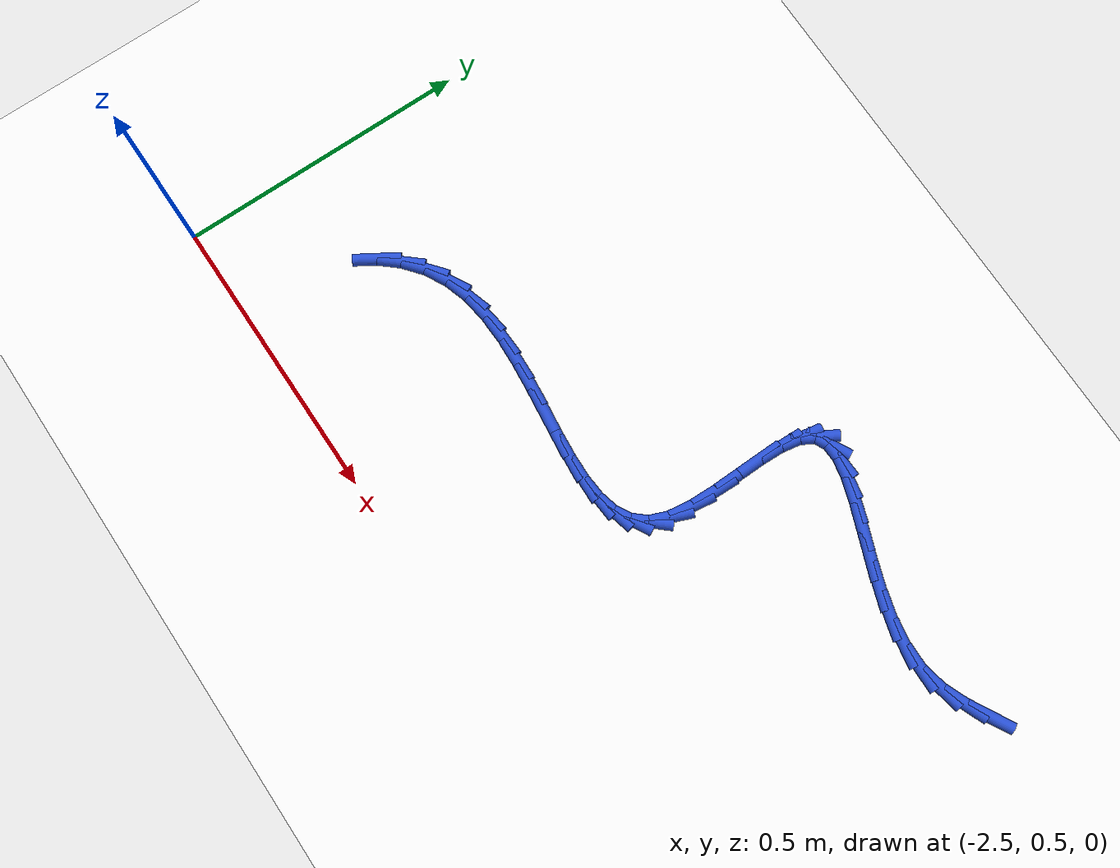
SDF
<sdf version="1.6">
 <world name="default">
  <model name="ground_plane">
   <static>1</static>
   <link name="link">
    <collision name="collision">
     <geometry><plane><normal>0 0 1</normal><size>100 100</size></plane></geometry>
     <surface><friction><ode><mu>100</mu><mu2>50</mu2></ode></friction></surface>
    </collision>
    <visual name="visual">
     <cast_shadows>0</cast_shadows>
     <geometry><plane><normal>0 0 1</normal><size>100 100</size></plane></geometry>
     <material>
      <script><uri>file://media/materials/scripts/gazebo.material</uri><name>Gazebo/WhiteGlow</name></script>
     </material>
    </visual>
   </link>
  </model>
  <model name="line">
   <link name="link_57">
    <pose>-1.14592876070842 1.1128604054703723 0.01 0 1.57 0.49512315362481224</pose>
    <collision name="collision">
     <geometry><cylinder><radius>0.01</radius><length>0.08</length></cylinder></geometry>
    </collision>
    <visual name="visual">
     <material>
      <script><name>Gazebo/Blue</name><uri>file://media/materials/scripts/gazebo.material</uri></script>
     </material>
     <geometry><cylinder><radius>0.01</radius><length>0.08</length></cylinder></geometry>
    </visual>
   </link>
   <link name="link_58">
    <pose>-1.1829979061100724 1.092843550995067 0.01 0 1.57 0.38882251743181706</pose>
    <collision name="collision">
     <geometry><cylinder><radius>0.01</radius><length>0.08</length></cylinder></geometry>
    </collision>
    <visual name="visual">
     <material>
      <script><name>Gazebo/Blue</name><uri>file://media/materials/scripts/gazebo.material</uri></script>
     </material>
     <geometry><cylinder><radius>0.01</radius><length>0.08</length></cylinder></geometry>
    </visual>
   </link>
   <link name="link_59">
    <pose>-1.2225672369330933 1.0766328214485796 0.01 0 1.57 0.18886843430079545</pose>
    <collision name="collision">
     <geometry><cylinder><radius>0.01</radius><length>0.08</length></cylinder></geometry>
    </collision>
    <visual name="visual">
     <material>
      <script><name>Gazebo/Blue</name><uri>file://media/materials/scripts/gazebo.material</uri></script>
     </material>
     <geometry><cylinder><radius>0.01</radius><length>0.08</length></cylinder></geometry>
    </visual>
   </link>
   <link name="link_60">
    <pose>-1.2649243204528209 1.068536405833244 0.01 0 1.57 -0.02352594420173727</pose>
    <collision name="collision">
     <geometry><cylinder><radius>0.01</radius><length>0.08</length></cylinder></geometry>
    </collision>
    <visual name="visual">
     <material>
      <script><name>Gazebo/Blue</name><uri>file://media/materials/scripts/gazebo.material</uri></script>
     </material>
     <geometry><cylinder><radius>0.01</radius><length>0.08</length></cylinder></geometry>
    </visual>
   </link>
   <link name="link_61">
    <pose>-1.3096845394527534 1.0695896265637743 0.01 0 1.57 -0.1759563586497165</pose>
    <collision name="collision">
     <geometry><cylinder><radius>0.01</radius><length>0.08</length></cylinder></geometry>
    </collision>
    <visual name="visual">
     <material>
      <script><name>Gazebo/Blue</name><uri>file://media/materials/scripts/gazebo.material</uri></script>
     </material>
     <geometry><cylinder><radius>0.01</radius><length>0.08</length></cylinder></geometry>
    </visual>
   </link>
   <link name="link_62">
    <pose>-1.3558405898408972 1.0777959433831446 0.01 0 1.57 -0.27743981206993373</pose>
    <collision name="collision">
     <geometry><cylinder><radius>0.01</radius><length>0.08</length></cylinder></geometry>
    </collision>
    <visual name="visual">
     <material>
      <script><name>Gazebo/Blue</name><uri>file://media/materials/scripts/gazebo.material</uri></script>
     </material>
     <geometry><cylinder><radius>0.01</radius><length>0.08</length></cylinder></geometry>
    </visual>
   </link>
   <link name="link_63">
    <pose>-1.4023616739739386 1.091044425922567 0.01 0 1.57 -0.3392050994815514</pose>
    <collision name="collision">
     <geometry><cylinder><radius>0.01</radius><length>0.08</length></cylinder></geometry>
    </collision>
    <visual name="visual">
     <material>
      <script><name>Gazebo/Blue</name><uri>file://media/materials/scripts/gazebo.material</uri></script>
     </material>
     <geometry><cylinder><radius>0.01</radius><length>0.08</length></cylinder></geometry>
    </visual>
   </link>
   <link name="link_64">
    <pose>-1.4482169942085614 1.107224143813251 0.01 0 1.57 -0.36748716285291777</pose>
    <collision name="collision">
     <geometry><cylinder><radius>0.01</radius><length>0.08</length></cylinder></geometry>
    </collision>
    <visual name="visual">
     <material>
      <script><name>Gazebo/Blue</name><uri>file://media/materials/scripts/gazebo.material</uri></script>
     </material>
     <geometry><cylinder><radius>0.01</radius><length>0.08</length></cylinder></geometry>
    </visual>
   </link>
   <link name="link_65">
    <pose>-1.4923757529014512 1.1242241666864081 0.01 0 1.57 -0.36241845271144185</pose>
    <collision name="collision">
     <geometry><cylinder><radius>0.01</radius><length>0.08</length></cylinder></geometry>
    </collision>
    <visual name="visual">
     <material>
      <script><name>Gazebo/Blue</name><uri>file://media/materials/scripts/gazebo.material</uri></script>
     </material>
     <geometry><cylinder><radius>0.01</radius><length>0.08</length></cylinder></geometry>
    </visual>
   </link>
   <link name="link_66">
    <pose>-1.5338071524092933 1.1399335641732482 0.01 0 1.57 -0.31576856222250815</pose>
    <collision name="collision">
     <geometry><cylinder><radius>0.01</radius><length>0.08</length></cylinder></geometry>
    </collision>
    <visual name="visual">
     <material>
      <script><name>Gazebo/Blue</name><uri>file://media/materials/scripts/gazebo.material</uri></script>
     </material>
     <geometry><cylinder><radius>0.01</radius><length>0.08</length></cylinder></geometry>
    </visual>
   </link>
   <link name="link_67">
    <pose>-1.5714803950887712 1.1522414059049817 0.01 0 1.57 -0.20377621307233781</pose>
    <collision name="collision">
     <geometry><cylinder><radius>0.01</radius><length>0.08</length></cylinder></geometry>
    </collision>
    <visual name="visual">
     <material>
      <script><name>Gazebo/Blue</name><uri>file://media/materials/scripts/gazebo.material</uri></script>
     </material>
     <geometry><cylinder><radius>0.01</radius><length>0.08</length></cylinder></geometry>
    </visual>
   </link>
   <link name="link_68">
    <pose>-1.604364683296572 1.1590367615128192 0.01 0 1.57 0.030586249244087038</pose>
    <collision name="collision">
     <geometry><cylinder><radius>0.01</radius><length>0.08</length></cylinder></geometry>
    </collision>
    <visual name="visual">
     <material>
      <script><name>Gazebo/Blue</name><uri>file://media/materials/scripts/gazebo.material</uri></script>
     </material>
     <geometry><cylinder><radius>0.01</radius><length>0.08</length></cylinder></geometry>
    </visual>
   </link>
   <link name="link_69">
    <pose>-1.6314292193893785 1.158208700627971 0.01 0 1.57 0.48150847401066266</pose>
    <collision name="collision">
     <geometry><cylinder><radius>0.01</radius><length>0.08</length></cylinder></geometry>
    </collision>
    <visual name="visual">
     <material>
      <script><name>Gazebo/Blue</name><uri>file://media/materials/scripts/gazebo.material</uri></script>
     </material>
     <geometry><cylinder><radius>0.01</radius><length>0.08</length></cylinder></geometry>
    </visual>
   </link>
   <link name="link_70">
    <pose>-1.651643205723877 1.1476462928816482 0.01 0 1.57 1.0565301844915453</pose>
    <collision name="collision">
     <geometry><cylinder><radius>0.01</radius><length>0.08</length></cylinder></geometry>
    </collision>
    <visual name="visual">
     <material>
      <script><name>Gazebo/Blue</name><uri>file://media/materials/scripts/gazebo.material</uri></script>
     </material>
     <geometry><cylinder><radius>0.01</radius><length>0.08</length></cylinder></geometry>
    </visual>
   </link>
   <link name="link_71">
    <pose>-1.6641480239226714 1.1255128170904154 0.01 0 1.57 1.3935172051023224</pose>
    <collision name="collision">
     <geometry><cylinder><radius>0.01</radius><length>0.08</length></cylinder></geometry>
    </collision>
    <visual name="visual">
     <material>
      <script><name>Gazebo/Blue</name><uri>file://media/materials/scripts/gazebo.material</uri></script>
     </material>
     <geometry><cylinder><radius>0.01</radius><length>0.08</length></cylinder></geometry>
    </visual>
   </link>
   <link name="link_72">
    <pose>-1.6699760453662007 1.0929831037709647 0.01 0 1.57 1.5368887003030332</pose>
    <collision name="collision">
     <geometry><cylinder><radius>0.01</radius><length>0.08</length></cylinder></geometry>
    </collision>
    <visual name="visual">
     <material>
      <script><name>Gazebo/Blue</name><uri>file://media/materials/scripts/gazebo.material</uri></script>
     </material>
     <geometry><cylinder><radius>0.01</radius><length>0.08</length></cylinder></geometry>
    </visual>
   </link>
   <link name="link_73">
    <pose>-1.6713290942013377 1.0530944300515528 0.01 0 1.57 -1.5503667881046992</pose>
    <collision name="collision">
     <geometry><cylinder><radius>0.01</radius><length>0.08</length></cylinder></geometry>
    </collision>
    <visual name="visual">
     <material>
      <script><name>Gazebo/Blue</name><uri>file://media/materials/scripts/gazebo.material</uri></script>
     </material>
     <geometry><cylinder><radius>0.01</radius><length>0.08</length></cylinder></geometry>
    </visual>
   </link>
   <link name="link_74">
    <pose>-1.670426335607644 1.008911690035228 0.01 0 1.57 -1.5501130559175391</pose>
    <collision name="collision">
     <geometry><cylinder><radius>0.01</radius><length>0.08</length></cylinder></geometry>
    </collision>
    <visual name="visual">
     <material>
      <script><name>Gazebo/Blue</name><uri>file://media/materials/scripts/gazebo.material</uri></script>
     </material>
     <geometry><cylinder><radius>0.01</radius><length>0.08</length></cylinder></geometry>
    </visual>
   </link>
   <link name="link_75">
    <pose>-1.6694869347646832 0.9634997778250419 0.01 0 1.57 1.5422765085888848</pose>
    <collision name="collision">
     <geometry><cylinder><radius>0.01</radius><length>0.08</length></cylinder></geometry>
    </collision>
    <visual name="visual">
     <material>
      <script><name>Gazebo/Blue</name><uri>file://media/materials/scripts/gazebo.material</uri></script>
     </material>
     <geometry><cylinder><radius>0.01</radius><length>0.08</length></cylinder></geometry>
    </visual>
   </link>
   <link name="link_76">
    <pose>-1.6707300568520165 0.9199235875240424 0.01 0 1.57 1.4258668051807464</pose>
    <collision name="collision">
     <geometry><cylinder><radius>0.01</radius><length>0.08</length></cylinder></geometry>
    </collision>
    <visual name="visual">
     <material>
      <script><name>Gazebo/Blue</name><uri>file://media/materials/scripts/gazebo.material</uri></script>
     </material>
     <geometry><cylinder><radius>0.01</radius><length>0.08</length></cylinder></geometry>
    </visual>
   </link>
   <link name="link_77">
    <pose>-1.6763748670492067 0.8812480132352805 0.01 0 1.57 1.1934421456415834</pose>
    <collision name="collision">
     <geometry><cylinder><radius>0.01</radius><length>0.08</length></cylinder></geometry>
    </collision>
    <visual name="visual">
     <material>
      <script><name>Gazebo/Blue</name><uri>file://media/materials/scripts/gazebo.material</uri></script>
     </material>
     <geometry><cylinder><radius>0.01</radius><length>0.08</length></cylinder></geometry>
    </visual>
   </link>
   <link name="link_78">
    <pose>-1.6885802449428222 0.8504534173251905 0.01 0 1.57 0.845765570977062</pose>
    <collision name="collision">
     <geometry><cylinder><radius>0.01</radius><length>0.08</length></cylinder></geometry>
    </collision>
    <visual name="visual">
     <material>
      <script><name>Gazebo/Blue</name><uri>file://media/materials/scripts/gazebo.material</uri></script>
     </material>
     <geometry><cylinder><radius>0.01</radius><length>0.08</length></cylinder></geometry>
    </visual>
   </link>
   <link name="link_79">
    <pose>-1.708049543455937 0.8284792401016513 0.01 0 1.57 0.50410100365402</pose>
    <collision name="collision">
     <geometry><cylinder><radius>0.01</radius><length>0.08</length></cylinder></geometry>
    </collision>
    <visual name="visual">
     <material>
      <script><name>Gazebo/Blue</name><uri>file://media/materials/scripts/gazebo.material</uri></script>
     </material>
     <geometry><cylinder><radius>0.01</radius><length>0.08</length></cylinder></geometry>
    </visual>
   </link>
   <link name="link_80">
    <pose>-1.7339912157374073 0.8141687913095957 0.01 0 1.57 0.24528890759011804</pose>
    <collision name="collision">
     <geometry><cylinder><radius>0.01</radius><length>0.08</length></cylinder></geometry>
    </collision>
    <visual name="visual">
     <material>
      <script><name>Gazebo/Blue</name><uri>file://media/materials/scripts/gazebo.material</uri></script>
     </material>
     <geometry><cylinder><radius>0.01</radius><length>0.08</length></cylinder></geometry>
    </visual>
   </link>
   <link name="link_81">
    <pose>-1.7655455529622448 0.8062698047904288 0.01 0 1.57 0.07531841054953758</pose>
    <collision name="collision">
     <geometry><cylinder><radius>0.01</radius><length>0.08</length></cylinder></geometry>
    </collision>
    <visual name="visual">
     <material>
      <script><name>Gazebo/Blue</name><uri>file://media/materials/scripts/gazebo.material</uri></script>
     </material>
     <geometry><cylinder><radius>0.01</radius><length>0.08</length></cylinder></geometry>
    </visual>
   </link>
   <link name="link_82">
    <pose>-1.8018528463054622 0.8035300143855554 0.01 0 1.57 -0.029024778434845803</pose>
    <collision name="collision">
     <geometry><cylinder><radius>0.01</radius><length>0.08</length></cylinder></geometry>
    </collision>
    <visual name="visual">
     <material>
      <script><name>Gazebo/Blue</name><uri>file://media/materials/scripts/gazebo.material</uri></script>
     </material>
     <geometry><cylinder><radius>0.01</radius><length>0.08</length></cylinder></geometry>
    </visual>
   </link>
   <link name="link_83">
    <pose>-1.8420533869420712 0.8046971539363801 0.01 0 1.57 -0.08816875642444236</pose>
    <collision name="collision">
     <geometry><cylinder><radius>0.01</radius><length>0.08</length></cylinder></geometry>
    </collision>
    <visual name="visual">
     <material>
      <script><name>Gazebo/Blue</name><uri>file://media/materials/scripts/gazebo.material</uri></script>
     </material>
     <geometry><cylinder><radius>0.01</radius><length>0.08</length></cylinder></geometry>
    </visual>
   </link>
   <link name="link_84">
    <pose>-1.885287466047084 0.8085189572843081 0.01 0 1.57 -0.11454683214708161</pose>
    <collision name="collision">
     <geometry><cylinder><radius>0.01</radius><length>0.08</length></cylinder></geometry>
    </collision>
    <visual name="visual">
     <material>
      <script><name>Gazebo/Blue</name><uri>file://media/materials/scripts/gazebo.material</uri></script>
     </material>
     <geometry><cylinder><radius>0.01</radius><length>0.08</length></cylinder></geometry>
    </visual>
   </link>
   <link name="link_85">
    <pose>-1.9306953747955127 0.8137431582707438 0.01 0 1.57 -0.11452446791711263</pose>
    <collision name="collision">
     <geometry><cylinder><radius>0.01</radius><length>0.08</length></cylinder></geometry>
    </collision>
    <visual name="visual">
     <material>
      <script><name>Gazebo/Blue</name><uri>file://media/materials/scripts/gazebo.material</uri></script>
     </material>
     <geometry><cylinder><radius>0.01</radius><length>0.08</length></cylinder></geometry>
    </visual>
   </link>
   <link name="link_86">
    <pose>-1.9774174043623691 0.8191174907370926 0.01 0 1.57 -0.09031152836896605</pose>
    <collision name="collision">
     <geometry><cylinder><radius>0.01</radius><length>0.08</length></cylinder></geometry>
    </collision>
    <visual name="visual">
     <material>
      <script><name>Gazebo/Blue</name><uri>file://media/materials/scripts/gazebo.material</uri></script>
     </material>
     <geometry><cylinder><radius>0.01</radius><length>0.08</length></cylinder></geometry>
    </visual>
   </link>
   <link name="link_87">
    <pose>-2.0245938459226656 0.8233896885247589 0.01 0 1.57 -0.04098089189678998</pose>
    <collision name="collision">
     <geometry><cylinder><radius>0.01</radius><length>0.08</length></cylinder></geometry>
    </collision>
    <visual name="visual">
     <material>
      <script><name>Gazebo/Blue</name><uri>file://media/materials/scripts/gazebo.material</uri></script>
     </material>
     <geometry><cylinder><radius>0.01</radius><length>0.08</length></cylinder></geometry>
    </visual>
   </link>
   <link name="link_88">
    <pose>-2.071364990651414 0.8253074854751479 0.01 0 1.57 0.03709599005994867</pose>
    <collision name="collision">
     <geometry><cylinder><radius>0.01</radius><length>0.08</length></cylinder></geometry>
    </collision>
    <visual name="visual">
     <material>
      <script><name>Gazebo/Blue</name><uri>file://media/materials/scripts/gazebo.material</uri></script>
     </material>
     <geometry><cylinder><radius>0.01</radius><length>0.08</length></cylinder></geometry>
    </visual>
   </link>
   <link name="link_89">
    <pose>-2.1168711297236267 0.8236186154296635 0.01 0 1.57 0.1498048757157107</pose>
    <collision name="collision">
     <geometry><cylinder><radius>0.01</radius><length>0.08</length></cylinder></geometry>
    </collision>
    <visual name="visual">
     <material>
      <script><name>Gazebo/Blue</name><uri>file://media/materials/scripts/gazebo.material</uri></script>
     </material>
     <geometry><cylinder><radius>0.01</radius><length>0.08</length></cylinder></geometry>
    </visual>
   </link>
   <link name="link_90">
    <pose>-2.160252554314315 0.8170708122297117 0.01 0 1.57 0.30367263136928785</pose>
    <collision name="collision">
     <geometry><cylinder><radius>0.01</radius><length>0.08</length></cylinder></geometry>
    </collision>
    <visual name="visual">
     <material>
      <script><name>Gazebo/Blue</name><uri>file://media/materials/scripts/gazebo.material</uri></script>
     </material>
     <geometry><cylinder><radius>0.01</radius><length>0.08</length></cylinder></geometry>
    </visual>
   </link>
   <link name="link_91">
    <pose>-2.2006495555984924 0.8044118097166968 0.01 0 1.57 0.4948739929983249</pose>
    <collision name="collision">
     <geometry><cylinder><radius>0.01</radius><length>0.08</length></cylinder></geometry>
    </collision>
    <visual name="visual">
     <material>
      <script><name>Gazebo/Blue</name><uri>file://media/materials/scripts/gazebo.material</uri></script>
     </material>
     <geometry><cylinder><radius>0.01</radius><length>0.08</length></cylinder></geometry>
    </visual>
   </link>
   <link name="link_92">
    <pose>-2.23721488305972 0.784678775941737 0.01 0 1.57 0.6811744788208002</pose>
    <collision name="collision">
     <geometry><cylinder><radius>0.01</radius><length>0.08</length></cylinder></geometry>
    </collision>
    <visual name="visual">
     <material>
      <script><name>Gazebo/Blue</name><uri>file://media/materials/scripts/gazebo.material</uri></script>
     </material>
     <geometry><cylinder><radius>0.01</radius><length>0.08</length></cylinder></geometry>
    </visual>
   </link>
   <link name="link_93">
    <pose>-2.269181251638605 0.7587666543328525 0.01 0 1.57 0.8523888600426895</pose>
    <collision name="collision">
     <geometry><cylinder><radius>0.01</radius><length>0.08</length></cylinder></geometry>
    </collision>
    <visual name="visual">
     <material>
      <script><name>Gazebo/Blue</name><uri>file://media/materials/scripts/gazebo.material</uri></script>
     </material>
     <geometry><cylinder><radius>0.01</radius><length>0.08</length></cylinder></geometry>
    </visual>
   </link>
   <link name="link_94">
    <pose>-2.2958129725096064 0.7283044390873358 0.01 0 1.57 1.0187287216085426</pose>
    <collision name="collision">
     <geometry><cylinder><radius>0.01</radius><length>0.08</length></cylinder></geometry>
    </collision>
    <visual name="visual">
     <material>
      <script><name>Gazebo/Blue</name><uri>file://media/materials/scripts/gazebo.material</uri></script>
     </material>
     <geometry><cylinder><radius>0.01</radius><length>0.08</length></cylinder></geometry>
    </visual>
   </link>
  </model>
 </world>
</sdf>
